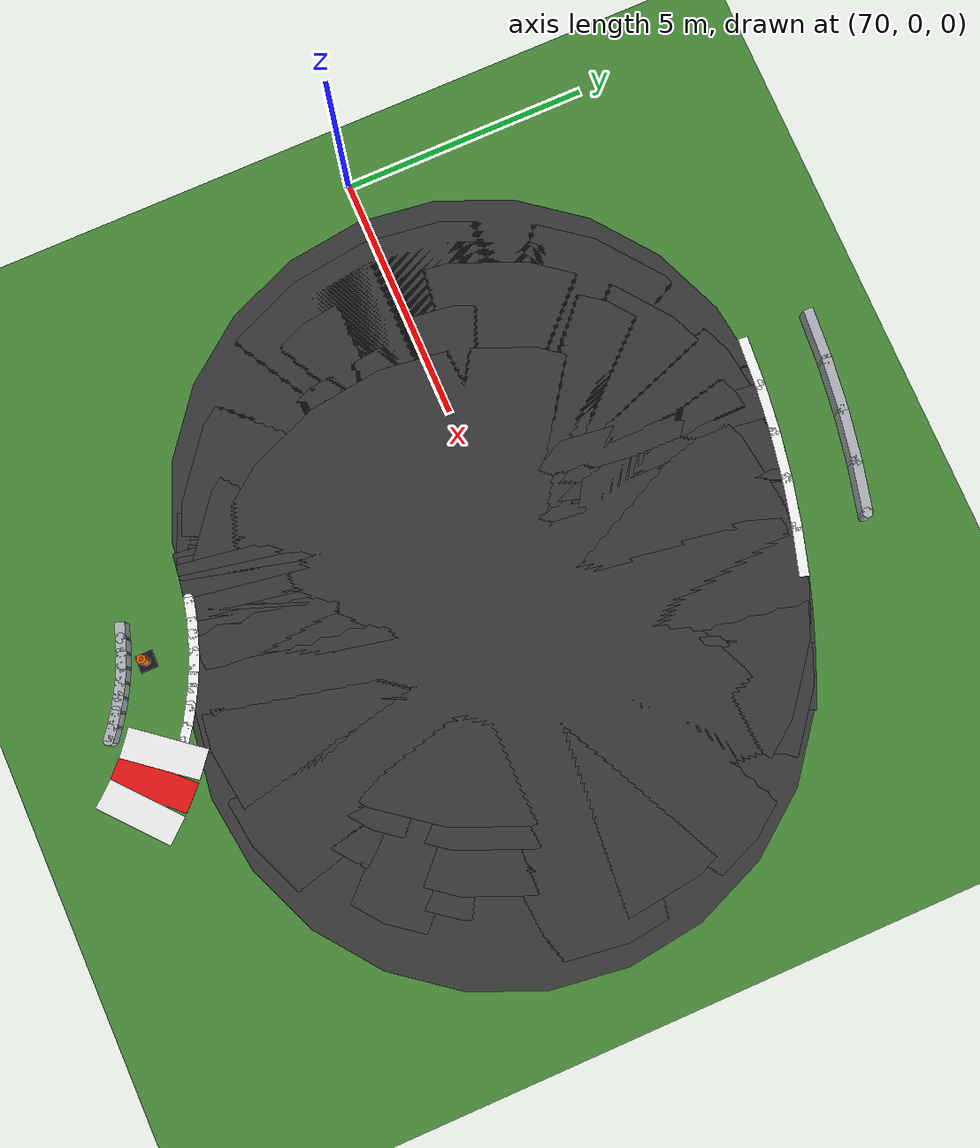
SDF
<sdf version="1.6">
 <world name="sem_silesia_ring_2026">
  <model name="ground_plane">
   <static>true</static>
   <link name="link">
    <collision name="collision">
     <geometry><plane><normal>0 0 1</normal><size>600 600</size></plane></geometry>
     <surface><friction><ode><mu>0.6</mu><mu2>0.6</mu2></ode></friction></surface>
    </collision>
    <visual name="visual">
     <geometry><plane><normal>0 0 1</normal><size>600 600</size></plane></geometry>
     <material><ambient>0.28 0.55 0.22 1</ambient><diffuse>0.28 0.55 0.22 1</diffuse></material>
    </visual>
   </link>
  </model>
  <model name="road_R_s77">
   <static>true</static>
   <pose>80.2827 -1.1712 0.0030 0 0 2.7053</pose>
   <link name="link">
    <visual name="v">
     <geometry><box><size>0.6957 12.0000 0.0060</size></box></geometry>
     <material><ambient>0.22 0.22 0.22 1</ambient><diffuse>0.22 0.22 0.22 1</diffuse></material>
    </visual>
    <collision name="c">
     <geometry><box><size>0.6957 12.0000 0.0060</size></box></geometry>
     <surface><friction><ode><mu>0.9</mu><mu2>0.9</mu2></ode></friction></surface>
    </collision>
   </link>
  </model>
  <model name="road_R_jnt78">
   <static>true</static>
   <pose>80.0842 -1.0807 0.0030 0 0 0</pose>
   <link name="link">
    <visual name="v">
     <geometry><cylinder><radius>6.0000</radius><length>0.0060</length></cylinder></geometry>
     <material><ambient>0.22 0.22 0.22 1</ambient><diffuse>0.22 0.22 0.22 1</diffuse></material>
    </visual>
    <collision name="c">
     <geometry><cylinder><radius>6.0000</radius><length>0.0060</length></cylinder></geometry>
     <surface><friction><ode><mu>0.9</mu><mu2>0.9</mu2></ode></friction></surface>
    </collision>
   </link>
  </model>
  <model name="road_R_s78">
   <static>true</static>
   <pose>79.8841 -0.9937 0.0030 0 0 2.7402</pose>
   <link name="link">
    <visual name="v">
     <geometry><box><size>0.6957 12.0000 0.0060</size></box></geometry>
     <material><ambient>0.22 0.22 0.22 1</ambient><diffuse>0.22 0.22 0.22 1</diffuse></material>
    </visual>
    <collision name="c">
     <geometry><box><size>0.6957 12.0000 0.0060</size></box></geometry>
     <surface><friction><ode><mu>0.9</mu><mu2>0.9</mu2></ode></friction></surface>
    </collision>
   </link>
  </model>
  <model name="road_R_jnt79">
   <static>true</static>
   <pose>79.6826 -0.9102 0.0030 0 0 0</pose>
   <link name="link">
    <visual name="v">
     <geometry><cylinder><radius>6.0000</radius><length>0.0060</length></cylinder></geometry>
     <material><ambient>0.22 0.22 0.22 1</ambient><diffuse>0.22 0.22 0.22 1</diffuse></material>
    </visual>
    <collision name="c">
     <geometry><cylinder><radius>6.0000</radius><length>0.0060</length></cylinder></geometry>
     <surface><friction><ode><mu>0.9</mu><mu2>0.9</mu2></ode></friction></surface>
    </collision>
   </link>
  </model>
  <model name="road_R_s79">
   <static>true</static>
   <pose>79.4796 -0.8302 0.0030 0 0 2.7751</pose>
   <link name="link">
    <visual name="v">
     <geometry><box><size>0.6957 12.0000 0.0060</size></box></geometry>
     <material><ambient>0.22 0.22 0.22 1</ambient><diffuse>0.22 0.22 0.22 1</diffuse></material>
    </visual>
    <collision name="c">
     <geometry><box><size>0.6957 12.0000 0.0060</size></box></geometry>
     <surface><friction><ode><mu>0.9</mu><mu2>0.9</mu2></ode></friction></surface>
    </collision>
   </link>
  </model>
  <model name="road_R_jnt80">
   <static>true</static>
   <pose>79.2753 -0.7538 0.0030 0 0 0</pose>
   <link name="link">
    <visual name="v">
     <geometry><cylinder><radius>6.0000</radius><length>0.0060</length></cylinder></geometry>
     <material><ambient>0.22 0.22 0.22 1</ambient><diffuse>0.22 0.22 0.22 1</diffuse></material>
    </visual>
    <collision name="c">
     <geometry><cylinder><radius>6.0000</radius><length>0.0060</length></cylinder></geometry>
     <surface><friction><ode><mu>0.9</mu><mu2>0.9</mu2></ode></friction></surface>
    </collision>
   </link>
  </model>
  <model name="road_R_s80">
   <static>true</static>
   <pose>79.0696 -0.6810 0.0030 0 0 2.8100</pose>
   <link name="link">
    <visual name="v">
     <geometry><box><size>0.6957 12.0000 0.0060</size></box></geometry>
     <material><ambient>0.22 0.22 0.22 1</ambient><diffuse>0.22 0.22 0.22 1</diffuse></material>
    </visual>
    <collision name="c">
     <geometry><box><size>0.6957 12.0000 0.0060</size></box></geometry>
     <surface><friction><ode><mu>0.9</mu><mu2>0.9</mu2></ode></friction></surface>
    </collision>
   </link>
  </model>
  <model name="road_R_jnt81">
   <static>true</static>
   <pose>78.8627 -0.6118 0.0030 0 0 0</pose>
   <link name="link">
    <visual name="v">
     <geometry><cylinder><radius>6.0000</radius><length>0.0060</length></cylinder></geometry>
     <material><ambient>0.22 0.22 0.22 1</ambient><diffuse>0.22 0.22 0.22 1</diffuse></material>
    </visual>
    <collision name="c">
     <geometry><cylinder><radius>6.0000</radius><length>0.0060</length></cylinder></geometry>
     <surface><friction><ode><mu>0.9</mu><mu2>0.9</mu2></ode></friction></surface>
    </collision>
   </link>
  </model>
  <model name="road_R_s81">
   <static>true</static>
   <pose>78.6546 -0.5462 0.0030 0 0 2.8449</pose>
   <link name="link">
    <visual name="v">
     <geometry><box><size>0.6957 12.0000 0.0060</size></box></geometry>
     <material><ambient>0.22 0.22 0.22 1</ambient><diffuse>0.22 0.22 0.22 1</diffuse></material>
    </visual>
    <collision name="c">
     <geometry><box><size>0.6957 12.0000 0.0060</size></box></geometry>
     <surface><friction><ode><mu>0.9</mu><mu2>0.9</mu2></ode></friction></surface>
    </collision>
   </link>
  </model>
  <model name="road_R_jnt82">
   <static>true</static>
   <pose>78.4455 -0.4842 0.0030 0 0 0</pose>
   <link name="link">
    <visual name="v">
     <geometry><cylinder><radius>6.0000</radius><length>0.0060</length></cylinder></geometry>
     <material><ambient>0.22 0.22 0.22 1</ambient><diffuse>0.22 0.22 0.22 1</diffuse></material>
    </visual>
    <collision name="c">
     <geometry><cylinder><radius>6.0000</radius><length>0.0060</length></cylinder></geometry>
     <surface><friction><ode><mu>0.9</mu><mu2>0.9</mu2></ode></friction></surface>
    </collision>
   </link>
  </model>
  <model name="road_R_s82">
   <static>true</static>
   <pose>78.2352 -0.4259 0.0030 0 0 2.8798</pose>
   <link name="link">
    <visual name="v">
     <geometry><box><size>0.6957 12.0000 0.0060</size></box></geometry>
     <material><ambient>0.22 0.22 0.22 1</ambient><diffuse>0.22 0.22 0.22 1</diffuse></material>
    </visual>
    <collision name="c">
     <geometry><box><size>0.6957 12.0000 0.0060</size></box></geometry>
     <surface><friction><ode><mu>0.9</mu><mu2>0.9</mu2></ode></friction></surface>
    </collision>
   </link>
  </model>
  <model name="road_R_jnt83">
   <static>true</static>
   <pose>78.0240 -0.3713 0.0030 0 0 0</pose>
   <link name="link">
    <visual name="v">
     <geometry><cylinder><radius>6.0000</radius><length>0.0060</length></cylinder></geometry>
     <material><ambient>0.22 0.22 0.22 1</ambient><diffuse>0.22 0.22 0.22 1</diffuse></material>
    </visual>
    <collision name="c">
     <geometry><cylinder><radius>6.0000</radius><length>0.0060</length></cylinder></geometry>
     <surface><friction><ode><mu>0.9</mu><mu2>0.9</mu2></ode></friction></surface>
    </collision>
   </link>
  </model>
  <model name="road_R_s83">
   <static>true</static>
   <pose>77.8119 -0.3204 0.0030 0 0 2.9147</pose>
   <link name="link">
    <visual name="v">
     <geometry><box><size>0.6957 12.0000 0.0060</size></box></geometry>
     <material><ambient>0.22 0.22 0.22 1</ambient><diffuse>0.22 0.22 0.22 1</diffuse></material>
    </visual>
    <collision name="c">
     <geometry><box><size>0.6957 12.0000 0.0060</size></box></geometry>
     <surface><friction><ode><mu>0.9</mu><mu2>0.9</mu2></ode></friction></surface>
    </collision>
   </link>
  </model>
  <model name="road_R_jnt84">
   <static>true</static>
   <pose>77.5989 -0.2732 0.0030 0 0 0</pose>
   <link name="link">
    <visual name="v">
     <geometry><cylinder><radius>6.0000</radius><length>0.0060</length></cylinder></geometry>
     <material><ambient>0.22 0.22 0.22 1</ambient><diffuse>0.22 0.22 0.22 1</diffuse></material>
    </visual>
    <collision name="c">
     <geometry><cylinder><radius>6.0000</radius><length>0.0060</length></cylinder></geometry>
     <surface><friction><ode><mu>0.9</mu><mu2>0.9</mu2></ode></friction></surface>
    </collision>
   </link>
  </model>
  <model name="road_R_s84">
   <static>true</static>
   <pose>77.3851 -0.2297 0.0030 0 0 2.9496</pose>
   <link name="link">
    <visual name="v">
     <geometry><box><size>0.6957 12.0000 0.0060</size></box></geometry>
     <material><ambient>0.22 0.22 0.22 1</ambient><diffuse>0.22 0.22 0.22 1</diffuse></material>
    </visual>
    <collision name="c">
     <geometry><box><size>0.6957 12.0000 0.0060</size></box></geometry>
     <surface><friction><ode><mu>0.9</mu><mu2>0.9</mu2></ode></friction></surface>
    </collision>
   </link>
  </model>
  <model name="road_R_jnt85">
   <static>true</static>
   <pose>77.1706 -0.1899 0.0030 0 0 0</pose>
   <link name="link">
    <visual name="v">
     <geometry><cylinder><radius>6.0000</radius><length>0.0060</length></cylinder></geometry>
     <material><ambient>0.22 0.22 0.22 1</ambient><diffuse>0.22 0.22 0.22 1</diffuse></material>
    </visual>
    <collision name="c">
     <geometry><cylinder><radius>6.0000</radius><length>0.0060</length></cylinder></geometry>
     <surface><friction><ode><mu>0.9</mu><mu2>0.9</mu2></ode></friction></surface>
    </collision>
   </link>
  </model>
  <model name="road_R_s85">
   <static>true</static>
   <pose>76.9554 -0.1539 0.0030 0 0 2.9845</pose>
   <link name="link">
    <visual name="v">
     <geometry><box><size>0.6957 12.0000 0.0060</size></box></geometry>
     <material><ambient>0.22 0.22 0.22 1</ambient><diffuse>0.22 0.22 0.22 1</diffuse></material>
    </visual>
    <collision name="c">
     <geometry><box><size>0.6957 12.0000 0.0060</size></box></geometry>
     <surface><friction><ode><mu>0.9</mu><mu2>0.9</mu2></ode></friction></surface>
    </collision>
   </link>
  </model>
  <model name="road_R_jnt86">
   <static>true</static>
   <pose>76.7397 -0.1216 0.0030 0 0 0</pose>
   <link name="link">
    <visual name="v">
     <geometry><cylinder><radius>6.0000</radius><length>0.0060</length></cylinder></geometry>
     <material><ambient>0.22 0.22 0.22 1</ambient><diffuse>0.22 0.22 0.22 1</diffuse></material>
    </visual>
    <collision name="c">
     <geometry><cylinder><radius>6.0000</radius><length>0.0060</length></cylinder></geometry>
     <surface><friction><ode><mu>0.9</mu><mu2>0.9</mu2></ode></friction></surface>
    </collision>
   </link>
  </model>
  <model name="road_R_s86">
   <static>true</static>
   <pose>76.5234 -0.0932 0.0030 0 0 3.0194</pose>
   <link name="link">
    <visual name="v">
     <geometry><box><size>0.6957 12.0000 0.0060</size></box></geometry>
     <material><ambient>0.22 0.22 0.22 1</ambient><diffuse>0.22 0.22 0.22 1</diffuse></material>
    </visual>
    <collision name="c">
     <geometry><box><size>0.6957 12.0000 0.0060</size></box></geometry>
     <surface><friction><ode><mu>0.9</mu><mu2>0.9</mu2></ode></friction></surface>
    </collision>
   </link>
  </model>
  <model name="wl_Ro_s54">
   <static>true</static>
   <pose>80.2259 5.1423 0.0050 0 0 2.8536</pose>
   <link name="link">
    <visual name="v">
     <geometry><box><size>1.0185 0.2000 0.0040</size></box></geometry>
     <material><ambient>1 1 1 1</ambient><diffuse>1 1 1 1</diffuse></material>
    </visual>
    <collision name="c">
     <geometry><box><size>1.0185 0.2000 0.0040</size></box></geometry>
     <surface><friction><ode><mu>0.9</mu><mu2>0.9</mu2></ode></friction></surface>
    </collision>
   </link>
  </model>
  <model name="wl_Ro_jnt55">
   <static>true</static>
   <pose>79.7623 5.2730 0.0050 0 0 0</pose>
   <link name="link">
    <visual name="v">
     <geometry><cylinder><radius>0.1000</radius><length>0.0040</length></cylinder></geometry>
     <material><ambient>1 1 1 1</ambient><diffuse>1 1 1 1</diffuse></material>
    </visual>
    <collision name="c">
     <geometry><cylinder><radius>0.1000</radius><length>0.0040</length></cylinder></geometry>
     <surface><friction><ode><mu>0.9</mu><mu2>0.9</mu2></ode></friction></surface>
    </collision>
   </link>
  </model>
  <model name="wl_Ro_s55">
   <static>true</static>
   <pose>79.2954 5.3916 0.0050 0 0 2.9060</pose>
   <link name="link">
    <visual name="v">
     <geometry><box><size>1.0185 0.2000 0.0040</size></box></geometry>
     <material><ambient>1 1 1 1</ambient><diffuse>1 1 1 1</diffuse></material>
    </visual>
    <collision name="c">
     <geometry><box><size>1.0185 0.2000 0.0040</size></box></geometry>
     <surface><friction><ode><mu>0.9</mu><mu2>0.9</mu2></ode></friction></surface>
    </collision>
   </link>
  </model>
  <model name="wl_Ro_jnt56">
   <static>true</static>
   <pose>78.8256 5.4979 0.0050 0 0 0</pose>
   <link name="link">
    <visual name="v">
     <geometry><cylinder><radius>0.1000</radius><length>0.0040</length></cylinder></geometry>
     <material><ambient>1 1 1 1</ambient><diffuse>1 1 1 1</diffuse></material>
    </visual>
    <collision name="c">
     <geometry><cylinder><radius>0.1000</radius><length>0.0040</length></cylinder></geometry>
     <surface><friction><ode><mu>0.9</mu><mu2>0.9</mu2></ode></friction></surface>
    </collision>
   </link>
  </model>
  <model name="wl_Ro_s56">
   <static>true</static>
   <pose>78.3531 5.5919 0.0050 0 0 2.9583</pose>
   <link name="link">
    <visual name="v">
     <geometry><box><size>1.0185 0.2000 0.0040</size></box></geometry>
     <material><ambient>1 1 1 1</ambient><diffuse>1 1 1 1</diffuse></material>
    </visual>
    <collision name="c">
     <geometry><box><size>1.0185 0.2000 0.0040</size></box></geometry>
     <surface><friction><ode><mu>0.9</mu><mu2>0.9</mu2></ode></friction></surface>
    </collision>
   </link>
  </model>
  <model name="wl_Ro_jnt57">
   <static>true</static>
   <pose>77.8784 5.6735 0.0050 0 0 0</pose>
   <link name="link">
    <visual name="v">
     <geometry><cylinder><radius>0.1000</radius><length>0.0040</length></cylinder></geometry>
     <material><ambient>1 1 1 1</ambient><diffuse>1 1 1 1</diffuse></material>
    </visual>
    <collision name="c">
     <geometry><cylinder><radius>0.1000</radius><length>0.0040</length></cylinder></geometry>
     <surface><friction><ode><mu>0.9</mu><mu2>0.9</mu2></ode></friction></surface>
    </collision>
   </link>
  </model>
  <model name="wl_Ro_s57">
   <static>true</static>
   <pose>77.4017 5.7426 0.0050 0 0 3.0107</pose>
   <link name="link">
    <visual name="v">
     <geometry><box><size>1.0185 0.2000 0.0040</size></box></geometry>
     <material><ambient>1 1 1 1</ambient><diffuse>1 1 1 1</diffuse></material>
    </visual>
    <collision name="c">
     <geometry><box><size>1.0185 0.2000 0.0040</size></box></geometry>
     <surface><friction><ode><mu>0.9</mu><mu2>0.9</mu2></ode></friction></surface>
    </collision>
   </link>
  </model>
  <model name="wl_Ro_jnt58">
   <static>true</static>
   <pose>76.9233 5.7992 0.0050 0 0 0</pose>
   <link name="link">
    <visual name="v">
     <geometry><cylinder><radius>0.1000</radius><length>0.0040</length></cylinder></geometry>
     <material><ambient>1 1 1 1</ambient><diffuse>1 1 1 1</diffuse></material>
    </visual>
    <collision name="c">
     <geometry><cylinder><radius>0.1000</radius><length>0.0040</length></cylinder></geometry>
     <surface><friction><ode><mu>0.9</mu><mu2>0.9</mu2></ode></friction></surface>
    </collision>
   </link>
  </model>
  <model name="wl_Ro_s58">
   <static>true</static>
   <pose>76.4436 5.8433 0.0050 0 0 3.0631</pose>
   <link name="link">
    <visual name="v">
     <geometry><box><size>1.0185 0.2000 0.0040</size></box></geometry>
     <material><ambient>1 1 1 1</ambient><diffuse>1 1 1 1</diffuse></material>
    </visual>
    <collision name="c">
     <geometry><box><size>1.0185 0.2000 0.0040</size></box></geometry>
     <surface><friction><ode><mu>0.9</mu><mu2>0.9</mu2></ode></friction></surface>
    </collision>
   </link>
  </model>
  <model name="wl_Ri_jnt43">
   <static>true</static>
   <pose>80.1292 -8.3465 0.0050 0 0 0</pose>
   <link name="link">
    <visual name="v">
     <geometry><cylinder><radius>0.1000</radius><length>0.0040</length></cylinder></geometry>
     <material><ambient>1 1 1 1</ambient><diffuse>1 1 1 1</diffuse></material>
    </visual>
    <collision name="c">
     <geometry><cylinder><radius>0.1000</radius><length>0.0040</length></cylinder></geometry>
     <surface><friction><ode><mu>0.9</mu><mu2>0.9</mu2></ode></friction></surface>
    </collision>
   </link>
  </model>
  <model name="wl_Ri_s43">
   <static>true</static>
   <pose>80.0187 -8.2136 0.0050 0 0 2.2777</pose>
   <link name="link">
    <visual name="v">
     <geometry><box><size>0.4008 0.2000 0.0040</size></box></geometry>
     <material><ambient>1 1 1 1</ambient><diffuse>1 1 1 1</diffuse></material>
    </visual>
    <collision name="c">
     <geometry><box><size>0.4008 0.2000 0.0040</size></box></geometry>
     <surface><friction><ode><mu>0.9</mu><mu2>0.9</mu2></ode></friction></surface>
    </collision>
   </link>
  </model>
  <model name="wl_Ri_jnt44">
   <static>true</static>
   <pose>79.9048 -8.0837 0.0050 0 0 0</pose>
   <link name="link">
    <visual name="v">
     <geometry><cylinder><radius>0.1000</radius><length>0.0040</length></cylinder></geometry>
     <material><ambient>1 1 1 1</ambient><diffuse>1 1 1 1</diffuse></material>
    </visual>
    <collision name="c">
     <geometry><cylinder><radius>0.1000</radius><length>0.0040</length></cylinder></geometry>
     <surface><friction><ode><mu>0.9</mu><mu2>0.9</mu2></ode></friction></surface>
    </collision>
   </link>
  </model>
  <model name="wl_Ri_s44">
   <static>true</static>
   <pose>79.7875 -7.9569 0.0050 0 0 2.3300</pose>
   <link name="link">
    <visual name="v">
     <geometry><box><size>0.4008 0.2000 0.0040</size></box></geometry>
     <material><ambient>1 1 1 1</ambient><diffuse>1 1 1 1</diffuse></material>
    </visual>
    <collision name="c">
     <geometry><box><size>0.4008 0.2000 0.0040</size></box></geometry>
     <surface><friction><ode><mu>0.9</mu><mu2>0.9</mu2></ode></friction></surface>
    </collision>
   </link>
  </model>
  <model name="wl_Ri_jnt45">
   <static>true</static>
   <pose>79.6669 -7.8331 0.0050 0 0 0</pose>
   <link name="link">
    <visual name="v">
     <geometry><cylinder><radius>0.1000</radius><length>0.0040</length></cylinder></geometry>
     <material><ambient>1 1 1 1</ambient><diffuse>1 1 1 1</diffuse></material>
    </visual>
    <collision name="c">
     <geometry><cylinder><radius>0.1000</radius><length>0.0040</length></cylinder></geometry>
     <surface><friction><ode><mu>0.9</mu><mu2>0.9</mu2></ode></friction></surface>
    </collision>
   </link>
  </model>
  <model name="wl_Ri_s45">
   <static>true</static>
   <pose>79.5431 -7.7125 0.0050 0 0 2.3824</pose>
   <link name="link">
    <visual name="v">
     <geometry><box><size>0.4008 0.2000 0.0040</size></box></geometry>
     <material><ambient>1 1 1 1</ambient><diffuse>1 1 1 1</diffuse></material>
    </visual>
    <collision name="c">
     <geometry><box><size>0.4008 0.2000 0.0040</size></box></geometry>
     <surface><friction><ode><mu>0.9</mu><mu2>0.9</mu2></ode></friction></surface>
    </collision>
   </link>
  </model>
  <model name="wl_Ri_jnt46">
   <static>true</static>
   <pose>79.4163 -7.5952 0.0050 0 0 0</pose>
   <link name="link">
    <visual name="v">
     <geometry><cylinder><radius>0.1000</radius><length>0.0040</length></cylinder></geometry>
     <material><ambient>1 1 1 1</ambient><diffuse>1 1 1 1</diffuse></material>
    </visual>
    <collision name="c">
     <geometry><cylinder><radius>0.1000</radius><length>0.0040</length></cylinder></geometry>
     <surface><friction><ode><mu>0.9</mu><mu2>0.9</mu2></ode></friction></surface>
    </collision>
   </link>
  </model>
  <model name="wl_Ri_s46">
   <static>true</static>
   <pose>79.2864 -7.4813 0.0050 0 0 2.4347</pose>
   <link name="link">
    <visual name="v">
     <geometry><box><size>0.4008 0.2000 0.0040</size></box></geometry>
     <material><ambient>1 1 1 1</ambient><diffuse>1 1 1 1</diffuse></material>
    </visual>
    <collision name="c">
     <geometry><box><size>0.4008 0.2000 0.0040</size></box></geometry>
     <surface><friction><ode><mu>0.9</mu><mu2>0.9</mu2></ode></friction></surface>
    </collision>
   </link>
  </model>
  <model name="wl_Ri_jnt47">
   <static>true</static>
   <pose>79.1535 -7.3708 0.0050 0 0 0</pose>
   <link name="link">
    <visual name="v">
     <geometry><cylinder><radius>0.1000</radius><length>0.0040</length></cylinder></geometry>
     <material><ambient>1 1 1 1</ambient><diffuse>1 1 1 1</diffuse></material>
    </visual>
    <collision name="c">
     <geometry><cylinder><radius>0.1000</radius><length>0.0040</length></cylinder></geometry>
     <surface><friction><ode><mu>0.9</mu><mu2>0.9</mu2></ode></friction></surface>
    </collision>
   </link>
  </model>
  <model name="wl_Ri_s47">
   <static>true</static>
   <pose>79.0178 -7.2639 0.0050 0 0 2.4871</pose>
   <link name="link">
    <visual name="v">
     <geometry><box><size>0.4008 0.2000 0.0040</size></box></geometry>
     <material><ambient>1 1 1 1</ambient><diffuse>1 1 1 1</diffuse></material>
    </visual>
    <collision name="c">
     <geometry><box><size>0.4008 0.2000 0.0040</size></box></geometry>
     <surface><friction><ode><mu>0.9</mu><mu2>0.9</mu2></ode></friction></surface>
    </collision>
   </link>
  </model>
  <model name="wl_Ri_jnt48">
   <static>true</static>
   <pose>78.8794 -7.1605 0.0050 0 0 0</pose>
   <link name="link">
    <visual name="v">
     <geometry><cylinder><radius>0.1000</radius><length>0.0040</length></cylinder></geometry>
     <material><ambient>1 1 1 1</ambient><diffuse>1 1 1 1</diffuse></material>
    </visual>
    <collision name="c">
     <geometry><cylinder><radius>0.1000</radius><length>0.0040</length></cylinder></geometry>
     <surface><friction><ode><mu>0.9</mu><mu2>0.9</mu2></ode></friction></surface>
    </collision>
   </link>
  </model>
  <model name="wl_Ri_s48">
   <static>true</static>
   <pose>78.7383 -7.0608 0.0050 0 0 2.5395</pose>
   <link name="link">
    <visual name="v">
     <geometry><box><size>0.4008 0.2000 0.0040</size></box></geometry>
     <material><ambient>1 1 1 1</ambient><diffuse>1 1 1 1</diffuse></material>
    </visual>
    <collision name="c">
     <geometry><box><size>0.4008 0.2000 0.0040</size></box></geometry>
     <surface><friction><ode><mu>0.9</mu><mu2>0.9</mu2></ode></friction></surface>
    </collision>
   </link>
  </model>
  <model name="wl_Ri_jnt49">
   <static>true</static>
   <pose>78.5946 -6.9648 0.0050 0 0 0</pose>
   <link name="link">
    <visual name="v">
     <geometry><cylinder><radius>0.1000</radius><length>0.0040</length></cylinder></geometry>
     <material><ambient>1 1 1 1</ambient><diffuse>1 1 1 1</diffuse></material>
    </visual>
    <collision name="c">
     <geometry><cylinder><radius>0.1000</radius><length>0.0040</length></cylinder></geometry>
     <surface><friction><ode><mu>0.9</mu><mu2>0.9</mu2></ode></friction></surface>
    </collision>
   </link>
  </model>
  <model name="wl_Ri_s49">
   <static>true</static>
   <pose>78.4485 -6.8726 0.0050 0 0 2.5918</pose>
   <link name="link">
    <visual name="v">
     <geometry><box><size>0.4008 0.2000 0.0040</size></box></geometry>
     <material><ambient>1 1 1 1</ambient><diffuse>1 1 1 1</diffuse></material>
    </visual>
    <collision name="c">
     <geometry><box><size>0.4008 0.2000 0.0040</size></box></geometry>
     <surface><friction><ode><mu>0.9</mu><mu2>0.9</mu2></ode></friction></surface>
    </collision>
   </link>
  </model>
  <model name="wl_Ri_jnt50">
   <static>true</static>
   <pose>78.3000 -6.7842 0.0050 0 0 0</pose>
   <link name="link">
    <visual name="v">
     <geometry><cylinder><radius>0.1000</radius><length>0.0040</length></cylinder></geometry>
     <material><ambient>1 1 1 1</ambient><diffuse>1 1 1 1</diffuse></material>
    </visual>
    <collision name="c">
     <geometry><cylinder><radius>0.1000</radius><length>0.0040</length></cylinder></geometry>
     <surface><friction><ode><mu>0.9</mu><mu2>0.9</mu2></ode></friction></surface>
    </collision>
   </link>
  </model>
  <model name="wl_Ri_s50">
   <static>true</static>
   <pose>78.1492 -6.6998 0.0050 0 0 2.6442</pose>
   <link name="link">
    <visual name="v">
     <geometry><box><size>0.4008 0.2000 0.0040</size></box></geometry>
     <material><ambient>1 1 1 1</ambient><diffuse>1 1 1 1</diffuse></material>
    </visual>
    <collision name="c">
     <geometry><box><size>0.4008 0.2000 0.0040</size></box></geometry>
     <surface><friction><ode><mu>0.9</mu><mu2>0.9</mu2></ode></friction></surface>
    </collision>
   </link>
  </model>
  <model name="wl_Ri_jnt51">
   <static>true</static>
   <pose>77.9963 -6.6194 0.0050 0 0 0</pose>
   <link name="link">
    <visual name="v">
     <geometry><cylinder><radius>0.1000</radius><length>0.0040</length></cylinder></geometry>
     <material><ambient>1 1 1 1</ambient><diffuse>1 1 1 1</diffuse></material>
    </visual>
    <collision name="c">
     <geometry><cylinder><radius>0.1000</radius><length>0.0040</length></cylinder></geometry>
     <surface><friction><ode><mu>0.9</mu><mu2>0.9</mu2></ode></friction></surface>
    </collision>
   </link>
  </model>
  <model name="wl_Ri_s51">
   <static>true</static>
   <pose>77.8414 -6.5429 0.0050 0 0 2.6965</pose>
   <link name="link">
    <visual name="v">
     <geometry><box><size>0.4008 0.2000 0.0040</size></box></geometry>
     <material><ambient>1 1 1 1</ambient><diffuse>1 1 1 1</diffuse></material>
    </visual>
    <collision name="c">
     <geometry><box><size>0.4008 0.2000 0.0040</size></box></geometry>
     <surface><friction><ode><mu>0.9</mu><mu2>0.9</mu2></ode></friction></surface>
    </collision>
   </link>
  </model>
  <model name="wl_Ri_jnt52">
   <static>true</static>
   <pose>77.6845 -6.4706 0.0050 0 0 0</pose>
   <link name="link">
    <visual name="v">
     <geometry><cylinder><radius>0.1000</radius><length>0.0040</length></cylinder></geometry>
     <material><ambient>1 1 1 1</ambient><diffuse>1 1 1 1</diffuse></material>
    </visual>
    <collision name="c">
     <geometry><cylinder><radius>0.1000</radius><length>0.0040</length></cylinder></geometry>
     <surface><friction><ode><mu>0.9</mu><mu2>0.9</mu2></ode></friction></surface>
    </collision>
   </link>
  </model>
  <model name="wl_Ri_s52">
   <static>true</static>
   <pose>77.5257 -6.4024 0.0050 0 0 2.7489</pose>
   <link name="link">
    <visual name="v">
     <geometry><box><size>0.4008 0.2000 0.0040</size></box></geometry>
     <material><ambient>1 1 1 1</ambient><diffuse>1 1 1 1</diffuse></material>
    </visual>
    <collision name="c">
     <geometry><box><size>0.4008 0.2000 0.0040</size></box></geometry>
     <surface><friction><ode><mu>0.9</mu><mu2>0.9</mu2></ode></friction></surface>
    </collision>
   </link>
  </model>
  <model name="wl_Ri_jnt53">
   <static>true</static>
   <pose>77.3652 -6.3384 0.0050 0 0 0</pose>
   <link name="link">
    <visual name="v">
     <geometry><cylinder><radius>0.1000</radius><length>0.0040</length></cylinder></geometry>
     <material><ambient>1 1 1 1</ambient><diffuse>1 1 1 1</diffuse></material>
    </visual>
    <collision name="c">
     <geometry><cylinder><radius>0.1000</radius><length>0.0040</length></cylinder></geometry>
     <surface><friction><ode><mu>0.9</mu><mu2>0.9</mu2></ode></friction></surface>
    </collision>
   </link>
  </model>
  <model name="wl_Ri_s53">
   <static>true</static>
   <pose>77.2031 -6.2786 0.0050 0 0 2.8013</pose>
   <link name="link">
    <visual name="v">
     <geometry><box><size>0.4008 0.2000 0.0040</size></box></geometry>
     <material><ambient>1 1 1 1</ambient><diffuse>1 1 1 1</diffuse></material>
    </visual>
    <collision name="c">
     <geometry><box><size>0.4008 0.2000 0.0040</size></box></geometry>
     <surface><friction><ode><mu>0.9</mu><mu2>0.9</mu2></ode></friction></surface>
    </collision>
   </link>
  </model>
  <model name="wl_Ri_jnt54">
   <static>true</static>
   <pose>77.0395 -6.2230 0.0050 0 0 0</pose>
   <link name="link">
    <visual name="v">
     <geometry><cylinder><radius>0.1000</radius><length>0.0040</length></cylinder></geometry>
     <material><ambient>1 1 1 1</ambient><diffuse>1 1 1 1</diffuse></material>
    </visual>
    <collision name="c">
     <geometry><cylinder><radius>0.1000</radius><length>0.0040</length></cylinder></geometry>
     <surface><friction><ode><mu>0.9</mu><mu2>0.9</mu2></ode></friction></surface>
    </collision>
   </link>
  </model>
  <model name="wl_Ri_s54">
   <static>true</static>
   <pose>76.8745 -6.1718 0.0050 0 0 2.8536</pose>
   <link name="link">
    <visual name="v">
     <geometry><box><size>0.4008 0.2000 0.0040</size></box></geometry>
     <material><ambient>1 1 1 1</ambient><diffuse>1 1 1 1</diffuse></material>
    </visual>
    <collision name="c">
     <geometry><box><size>0.4008 0.2000 0.0040</size></box></geometry>
     <surface><friction><ode><mu>0.9</mu><mu2>0.9</mu2></ode></friction></surface>
    </collision>
   </link>
  </model>
  <model name="wl_Ri_jnt55">
   <static>true</static>
   <pose>76.7082 -6.1249 0.0050 0 0 0</pose>
   <link name="link">
    <visual name="v">
     <geometry><cylinder><radius>0.1000</radius><length>0.0040</length></cylinder></geometry>
     <material><ambient>1 1 1 1</ambient><diffuse>1 1 1 1</diffuse></material>
    </visual>
    <collision name="c">
     <geometry><cylinder><radius>0.1000</radius><length>0.0040</length></cylinder></geometry>
     <surface><friction><ode><mu>0.9</mu><mu2>0.9</mu2></ode></friction></surface>
    </collision>
   </link>
  </model>
  <model name="wl_Ri_s55">
   <static>true</static>
   <pose>76.5407 -6.0824 0.0050 0 0 2.9060</pose>
   <link name="link">
    <visual name="v">
     <geometry><box><size>0.4008 0.2000 0.0040</size></box></geometry>
     <material><ambient>1 1 1 1</ambient><diffuse>1 1 1 1</diffuse></material>
    </visual>
    <collision name="c">
     <geometry><box><size>0.4008 0.2000 0.0040</size></box></geometry>
     <surface><friction><ode><mu>0.9</mu><mu2>0.9</mu2></ode></friction></surface>
    </collision>
   </link>
  </model>
  <model name="wl_Ri_jnt56">
   <static>true</static>
   <pose>76.3722 -6.0442 0.0050 0 0 0</pose>
   <link name="link">
    <visual name="v">
     <geometry><cylinder><radius>0.1000</radius><length>0.0040</length></cylinder></geometry>
     <material><ambient>1 1 1 1</ambient><diffuse>1 1 1 1</diffuse></material>
    </visual>
    <collision name="c">
     <geometry><cylinder><radius>0.1000</radius><length>0.0040</length></cylinder></geometry>
     <surface><friction><ode><mu>0.9</mu><mu2>0.9</mu2></ode></friction></surface>
    </collision>
   </link>
  </model>
  <model name="kR_in_k17">
   <static>true</static>
   <pose>79.7906 -8.4085 0.0120 0 0 2.2777</pose>
   <link name="link">
    <visual name="v">
     <geometry><box><size>0.6135 1.6000 0.0120</size></box></geometry>
     <material><ambient>0.96 0.96 0.96 1</ambient><diffuse>0.96 0.96 0.96 1</diffuse></material>
    </visual>
    <collision name="c">
     <geometry><box><size>0.6135 1.6000 0.0120</size></box></geometry>
     <surface><friction><ode><mu>0.9</mu><mu2>0.9</mu2></ode></friction></surface>
    </collision>
   </link>
  </model>
  <model name="kR_in_k18">
   <static>true</static>
   <pose>79.3843 -7.9758 0.0120 0 0 2.3719</pose>
   <link name="link">
    <visual name="v">
     <geometry><box><size>0.6135 1.6000 0.0120</size></box></geometry>
     <material><ambient>0.92 0.08 0.08 1</ambient><diffuse>0.92 0.08 0.08 1</diffuse></material>
    </visual>
    <collision name="c">
     <geometry><box><size>0.6135 1.6000 0.0120</size></box></geometry>
     <surface><friction><ode><mu>0.9</mu><mu2>0.9</mu2></ode></friction></surface>
    </collision>
   </link>
  </model>
  <model name="kR_in_k19">
   <static>true</static>
   <pose>78.9390 -7.5833 0.0120 0 0 2.4662</pose>
   <link name="link">
    <visual name="v">
     <geometry><box><size>0.6135 1.6000 0.0120</size></box></geometry>
     <material><ambient>0.96 0.96 0.96 1</ambient><diffuse>0.96 0.96 0.96 1</diffuse></material>
    </visual>
    <collision name="c">
     <geometry><box><size>0.6135 1.6000 0.0120</size></box></geometry>
     <surface><friction><ode><mu>0.9</mu><mu2>0.9</mu2></ode></friction></surface>
    </collision>
   </link>
  </model>
  <model name="arm_Ro_jnt55">
   <static>true</static>
   <pose>80.0987 6.5287 0.2250 0 0 0</pose>
   <link name="link">
    <visual name="v">
     <geometry><cylinder><radius>0.1000</radius><length>0.4500</length></cylinder></geometry>
     <material><ambient>0.70 0.72 0.74 1</ambient><diffuse>0.70 0.72 0.74 1</diffuse></material>
    </visual>
    <collision name="c">
     <geometry><cylinder><radius>0.1000</radius><length>0.4500</length></cylinder></geometry>
     <surface><friction><ode><mu>0.9</mu><mu2>0.9</mu2></ode></friction></surface>
    </collision>
   </link>
  </model>
  <model name="arm_Ro_s55">
   <static>true</static>
   <pose>79.5989 6.6557 0.2250 0 0 2.9060</pose>
   <link name="link">
    <visual name="v">
     <geometry><box><size>1.0866 0.2000 0.4500</size></box></geometry>
     <material><ambient>0.70 0.72 0.74 1</ambient><diffuse>0.70 0.72 0.74 1</diffuse></material>
    </visual>
    <collision name="c">
     <geometry><box><size>1.0866 0.2000 0.4500</size></box></geometry>
     <surface><friction><ode><mu>0.9</mu><mu2>0.9</mu2></ode></friction></surface>
    </collision>
   </link>
  </model>
  <model name="arm_Ro_jnt56">
   <static>true</static>
   <pose>79.0959 6.7695 0.2250 0 0 0</pose>
   <link name="link">
    <visual name="v">
     <geometry><cylinder><radius>0.1000</radius><length>0.4500</length></cylinder></geometry>
     <material><ambient>0.70 0.72 0.74 1</ambient><diffuse>0.70 0.72 0.74 1</diffuse></material>
    </visual>
    <collision name="c">
     <geometry><cylinder><radius>0.1000</radius><length>0.4500</length></cylinder></geometry>
     <surface><friction><ode><mu>0.9</mu><mu2>0.9</mu2></ode></friction></surface>
    </collision>
   </link>
  </model>
  <model name="arm_Ro_s56">
   <static>true</static>
   <pose>78.5900 6.8701 0.2250 0 0 2.9583</pose>
   <link name="link">
    <visual name="v">
     <geometry><box><size>1.0866 0.2000 0.4500</size></box></geometry>
     <material><ambient>0.70 0.72 0.74 1</ambient><diffuse>0.70 0.72 0.74 1</diffuse></material>
    </visual>
    <collision name="c">
     <geometry><box><size>1.0866 0.2000 0.4500</size></box></geometry>
     <surface><friction><ode><mu>0.9</mu><mu2>0.9</mu2></ode></friction></surface>
    </collision>
   </link>
  </model>
  <model name="arm_Ro_jnt57">
   <static>true</static>
   <pose>78.0818 6.9575 0.2250 0 0 0</pose>
   <link name="link">
    <visual name="v">
     <geometry><cylinder><radius>0.1000</radius><length>0.4500</length></cylinder></geometry>
     <material><ambient>0.70 0.72 0.74 1</ambient><diffuse>0.70 0.72 0.74 1</diffuse></material>
    </visual>
    <collision name="c">
     <geometry><cylinder><radius>0.1000</radius><length>0.4500</length></cylinder></geometry>
     <surface><friction><ode><mu>0.9</mu><mu2>0.9</mu2></ode></friction></surface>
    </collision>
   </link>
  </model>
  <model name="arm_Ro_s57">
   <static>true</static>
   <pose>77.5714 7.0315 0.2250 0 0 3.0107</pose>
   <link name="link">
    <visual name="v">
     <geometry><box><size>1.0866 0.2000 0.4500</size></box></geometry>
     <material><ambient>0.70 0.72 0.74 1</ambient><diffuse>0.70 0.72 0.74 1</diffuse></material>
    </visual>
    <collision name="c">
     <geometry><box><size>1.0866 0.2000 0.4500</size></box></geometry>
     <surface><friction><ode><mu>0.9</mu><mu2>0.9</mu2></ode></friction></surface>
    </collision>
   </link>
  </model>
  <model name="arm_Ro_jnt58">
   <static>true</static>
   <pose>77.0592 7.0921 0.2250 0 0 0</pose>
   <link name="link">
    <visual name="v">
     <geometry><cylinder><radius>0.1000</radius><length>0.4500</length></cylinder></geometry>
     <material><ambient>0.70 0.72 0.74 1</ambient><diffuse>0.70 0.72 0.74 1</diffuse></material>
    </visual>
    <collision name="c">
     <geometry><cylinder><radius>0.1000</radius><length>0.4500</length></cylinder></geometry>
     <surface><friction><ode><mu>0.9</mu><mu2>0.9</mu2></ode></friction></surface>
    </collision>
   </link>
  </model>
  <model name="arm_Ro_s58">
   <static>true</static>
   <pose>76.5456 7.1393 0.2250 0 0 3.0631</pose>
   <link name="link">
    <visual name="v">
     <geometry><box><size>1.0866 0.2000 0.4500</size></box></geometry>
     <material><ambient>0.70 0.72 0.74 1</ambient><diffuse>0.70 0.72 0.74 1</diffuse></material>
    </visual>
    <collision name="c">
     <geometry><box><size>1.0866 0.2000 0.4500</size></box></geometry>
     <surface><friction><ode><mu>0.9</mu><mu2>0.9</mu2></ode></friction></surface>
    </collision>
   </link>
  </model>
  <model name="arm_Ri_jnt47">
   <static>true</static>
   <pose>78.3354 -8.3811 0.2250 0 0 0</pose>
   <link name="link">
    <visual name="v">
     <geometry><cylinder><radius>0.1000</radius><length>0.4500</length></cylinder></geometry>
     <material><ambient>0.70 0.72 0.74 1</ambient><diffuse>0.70 0.72 0.74 1</diffuse></material>
    </visual>
    <collision name="c">
     <geometry><cylinder><radius>0.1000</radius><length>0.4500</length></cylinder></geometry>
     <surface><friction><ode><mu>0.9</mu><mu2>0.9</mu2></ode></friction></surface>
    </collision>
   </link>
  </model>
  <model name="arm_Ri_s47">
   <static>true</static>
   <pose>78.2264 -8.2952 0.2250 0 0 2.4871</pose>
   <link name="link">
    <visual name="v">
     <geometry><box><size>0.3327 0.2000 0.4500</size></box></geometry>
     <material><ambient>0.70 0.72 0.74 1</ambient><diffuse>0.70 0.72 0.74 1</diffuse></material>
    </visual>
    <collision name="c">
     <geometry><box><size>0.3327 0.2000 0.4500</size></box></geometry>
     <surface><friction><ode><mu>0.9</mu><mu2>0.9</mu2></ode></friction></surface>
    </collision>
   </link>
  </model>
  <model name="arm_Ri_jnt48">
   <static>true</static>
   <pose>78.1153 -8.2122 0.2250 0 0 0</pose>
   <link name="link">
    <visual name="v">
     <geometry><cylinder><radius>0.1000</radius><length>0.4500</length></cylinder></geometry>
     <material><ambient>0.70 0.72 0.74 1</ambient><diffuse>0.70 0.72 0.74 1</diffuse></material>
    </visual>
    <collision name="c">
     <geometry><cylinder><radius>0.1000</radius><length>0.4500</length></cylinder></geometry>
     <surface><friction><ode><mu>0.9</mu><mu2>0.9</mu2></ode></friction></surface>
    </collision>
   </link>
  </model>
  <model name="arm_Ri_s48">
   <static>true</static>
   <pose>78.0020 -8.1321 0.2250 0 0 2.5395</pose>
   <link name="link">
    <visual name="v">
     <geometry><box><size>0.3327 0.2000 0.4500</size></box></geometry>
     <material><ambient>0.70 0.72 0.74 1</ambient><diffuse>0.70 0.72 0.74 1</diffuse></material>
    </visual>
    <collision name="c">
     <geometry><box><size>0.3327 0.2000 0.4500</size></box></geometry>
     <surface><friction><ode><mu>0.9</mu><mu2>0.9</mu2></ode></friction></surface>
    </collision>
   </link>
  </model>
  <model name="arm_Ri_jnt49">
   <static>true</static>
   <pose>77.8866 -8.0550 0.2250 0 0 0</pose>
   <link name="link">
    <visual name="v">
     <geometry><cylinder><radius>0.1000</radius><length>0.4500</length></cylinder></geometry>
     <material><ambient>0.70 0.72 0.74 1</ambient><diffuse>0.70 0.72 0.74 1</diffuse></material>
    </visual>
    <collision name="c">
     <geometry><cylinder><radius>0.1000</radius><length>0.4500</length></cylinder></geometry>
     <surface><friction><ode><mu>0.9</mu><mu2>0.9</mu2></ode></friction></surface>
    </collision>
   </link>
  </model>
  <model name="arm_Ri_s49">
   <static>true</static>
   <pose>77.7692 -7.9810 0.2250 0 0 2.5918</pose>
   <link name="link">
    <visual name="v">
     <geometry><box><size>0.3327 0.2000 0.4500</size></box></geometry>
     <material><ambient>0.70 0.72 0.74 1</ambient><diffuse>0.70 0.72 0.74 1</diffuse></material>
    </visual>
    <collision name="c">
     <geometry><box><size>0.3327 0.2000 0.4500</size></box></geometry>
     <surface><friction><ode><mu>0.9</mu><mu2>0.9</mu2></ode></friction></surface>
    </collision>
   </link>
  </model>
  <model name="arm_Ri_jnt50">
   <static>true</static>
   <pose>77.6500 -7.9101 0.2250 0 0 0</pose>
   <link name="link">
    <visual name="v">
     <geometry><cylinder><radius>0.1000</radius><length>0.4500</length></cylinder></geometry>
     <material><ambient>0.70 0.72 0.74 1</ambient><diffuse>0.70 0.72 0.74 1</diffuse></material>
    </visual>
    <collision name="c">
     <geometry><cylinder><radius>0.1000</radius><length>0.4500</length></cylinder></geometry>
     <surface><friction><ode><mu>0.9</mu><mu2>0.9</mu2></ode></friction></surface>
    </collision>
   </link>
  </model>
  <model name="arm_Ri_s50">
   <static>true</static>
   <pose>77.5289 -7.8423 0.2250 0 0 2.6442</pose>
   <link name="link">
    <visual name="v">
     <geometry><box><size>0.3327 0.2000 0.4500</size></box></geometry>
     <material><ambient>0.70 0.72 0.74 1</ambient><diffuse>0.70 0.72 0.74 1</diffuse></material>
    </visual>
    <collision name="c">
     <geometry><box><size>0.3327 0.2000 0.4500</size></box></geometry>
     <surface><friction><ode><mu>0.9</mu><mu2>0.9</mu2></ode></friction></surface>
    </collision>
   </link>
  </model>
  <model name="arm_Ri_jnt51">
   <static>true</static>
   <pose>77.4061 -7.7777 0.2250 0 0 0</pose>
   <link name="link">
    <visual name="v">
     <geometry><cylinder><radius>0.1000</radius><length>0.4500</length></cylinder></geometry>
     <material><ambient>0.70 0.72 0.74 1</ambient><diffuse>0.70 0.72 0.74 1</diffuse></material>
    </visual>
    <collision name="c">
     <geometry><cylinder><radius>0.1000</radius><length>0.4500</length></cylinder></geometry>
     <surface><friction><ode><mu>0.9</mu><mu2>0.9</mu2></ode></friction></surface>
    </collision>
   </link>
  </model>
  <model name="arm_Ri_s51">
   <static>true</static>
   <pose>77.2817 -7.7163 0.2250 0 0 2.6965</pose>
   <link name="link">
    <visual name="v">
     <geometry><box><size>0.3327 0.2000 0.4500</size></box></geometry>
     <material><ambient>0.70 0.72 0.74 1</ambient><diffuse>0.70 0.72 0.74 1</diffuse></material>
    </visual>
    <collision name="c">
     <geometry><box><size>0.3327 0.2000 0.4500</size></box></geometry>
     <surface><friction><ode><mu>0.9</mu><mu2>0.9</mu2></ode></friction></surface>
    </collision>
   </link>
  </model>
  <model name="arm_Ri_jnt52">
   <static>true</static>
   <pose>77.1557 -7.6582 0.2250 0 0 0</pose>
   <link name="link">
    <visual name="v">
     <geometry><cylinder><radius>0.1000</radius><length>0.4500</length></cylinder></geometry>
     <material><ambient>0.70 0.72 0.74 1</ambient><diffuse>0.70 0.72 0.74 1</diffuse></material>
    </visual>
    <collision name="c">
     <geometry><cylinder><radius>0.1000</radius><length>0.4500</length></cylinder></geometry>
     <surface><friction><ode><mu>0.9</mu><mu2>0.9</mu2></ode></friction></surface>
    </collision>
   </link>
  </model>
  <model name="arm_Ri_s52">
   <static>true</static>
   <pose>77.0282 -7.6034 0.2250 0 0 2.7489</pose>
   <link name="link">
    <visual name="v">
     <geometry><box><size>0.3327 0.2000 0.4500</size></box></geometry>
     <material><ambient>0.70 0.72 0.74 1</ambient><diffuse>0.70 0.72 0.74 1</diffuse></material>
    </visual>
    <collision name="c">
     <geometry><box><size>0.3327 0.2000 0.4500</size></box></geometry>
     <surface><friction><ode><mu>0.9</mu><mu2>0.9</mu2></ode></friction></surface>
    </collision>
   </link>
  </model>
  <model name="arm_Ri_jnt53">
   <static>true</static>
   <pose>76.8994 -7.5520 0.2250 0 0 0</pose>
   <link name="link">
    <visual name="v">
     <geometry><cylinder><radius>0.1000</radius><length>0.4500</length></cylinder></geometry>
     <material><ambient>0.70 0.72 0.74 1</ambient><diffuse>0.70 0.72 0.74 1</diffuse></material>
    </visual>
    <collision name="c">
     <geometry><cylinder><radius>0.1000</radius><length>0.4500</length></cylinder></geometry>
     <surface><friction><ode><mu>0.9</mu><mu2>0.9</mu2></ode></friction></surface>
    </collision>
   </link>
  </model>
  <model name="arm_Ri_s53">
   <static>true</static>
   <pose>76.7692 -7.5040 0.2250 0 0 2.8013</pose>
   <link name="link">
    <visual name="v">
     <geometry><box><size>0.3327 0.2000 0.4500</size></box></geometry>
     <material><ambient>0.70 0.72 0.74 1</ambient><diffuse>0.70 0.72 0.74 1</diffuse></material>
    </visual>
    <collision name="c">
     <geometry><box><size>0.3327 0.2000 0.4500</size></box></geometry>
     <surface><friction><ode><mu>0.9</mu><mu2>0.9</mu2></ode></friction></surface>
    </collision>
   </link>
  </model>
  <model name="arm_Ri_jnt54">
   <static>true</static>
   <pose>76.6378 -7.4594 0.2250 0 0 0</pose>
   <link name="link">
    <visual name="v">
     <geometry><cylinder><radius>0.1000</radius><length>0.4500</length></cylinder></geometry>
     <material><ambient>0.70 0.72 0.74 1</ambient><diffuse>0.70 0.72 0.74 1</diffuse></material>
    </visual>
    <collision name="c">
     <geometry><cylinder><radius>0.1000</radius><length>0.4500</length></cylinder></geometry>
     <surface><friction><ode><mu>0.9</mu><mu2>0.9</mu2></ode></friction></surface>
    </collision>
   </link>
  </model>
  <model name="arm_Ri_s54">
   <static>true</static>
   <pose>76.5053 -7.4183 0.2250 0 0 2.8536</pose>
   <link name="link">
    <visual name="v">
     <geometry><box><size>0.3327 0.2000 0.4500</size></box></geometry>
     <material><ambient>0.70 0.72 0.74 1</ambient><diffuse>0.70 0.72 0.74 1</diffuse></material>
    </visual>
    <collision name="c">
     <geometry><box><size>0.3327 0.2000 0.4500</size></box></geometry>
     <surface><friction><ode><mu>0.9</mu><mu2>0.9</mu2></ode></friction></surface>
    </collision>
   </link>
  </model>
  <model name="cn_Ri_7">
   <static>true</static>
   <pose>77.1813 -7.2339 0 0 0 0</pose>
   <link name="link">
    <visual name="base">
     <pose>0 0 0.03 0 0 0</pose>
     <geometry><box><size>0.35 0.35 0.06</size></box></geometry>
     <material><ambient>0.08 0.08 0.08 1</ambient><diffuse>0.08 0.08 0.08 1</diffuse></material>
    </visual>
    <visual name="body">
     <pose>0 0 0.30 0 0 0</pose>
     <geometry><cylinder><radius>0.09</radius><length>0.50</length></cylinder></geometry>
     <material><ambient>1.0 0.38 0.0 1</ambient><diffuse>1.0 0.38 0.0 1</diffuse></material>
    </visual>
    <visual name="stripe">
     <pose>0 0 0.32 0 0 0</pose>
     <geometry><cylinder><radius>0.095</radius><length>0.12</length></cylinder></geometry>
     <material><ambient>1 1 1 1</ambient><diffuse>1 1 1 1</diffuse></material>
    </visual>
    <visual name="tip">
     <pose>0 0 0.57 0 0 0</pose>
     <geometry><sphere><radius>0.04</radius></sphere></geometry>
     <material><ambient>1.0 0.38 0.0 1</ambient><diffuse>1.0 0.38 0.0 1</diffuse></material>
    </visual>
    <collision name="c">
     <pose>0 0 0.28 0 0 0</pose>
     <geometry><cylinder><radius>0.09</radius><length>0.56</length></cylinder></geometry>
    </collision>
   </link>
  </model>
 </world>
</sdf>
